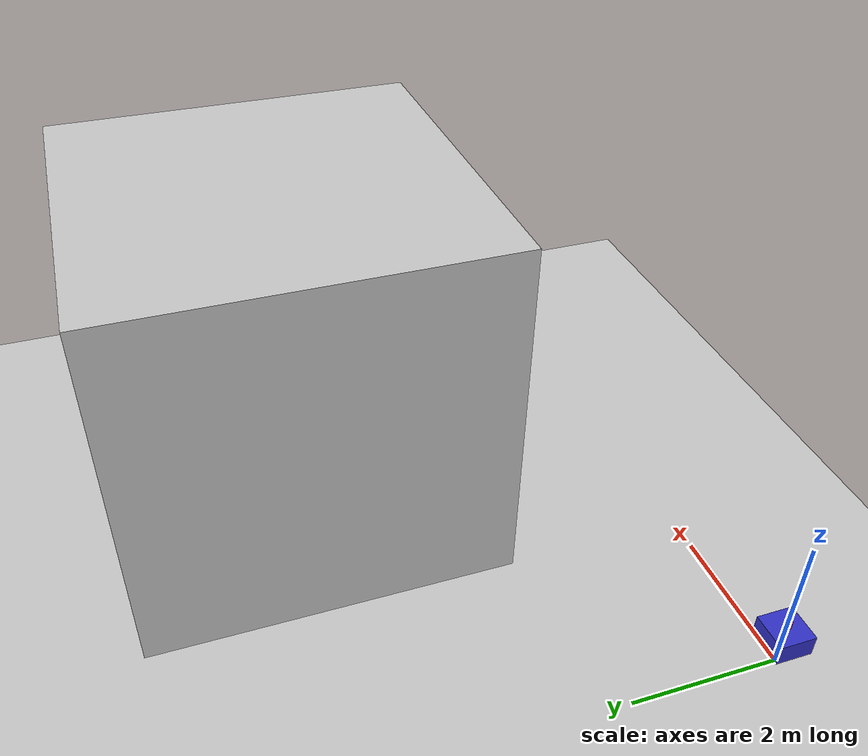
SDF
<?xml version="1.0" ?>
<sdf version="1.7">
  <world name="simple_lidar_world">

    <!-- Global light source -->
    <include>
      <uri>https://fuel.ignitionrobotics.org/1.0/OpenRobotics/models/Sun</uri>
    </include>

    <!-- Ground plane -->
    <include>
      <uri>https://fuel.ignitionrobotics.org/1.0/OpenRobotics/models/Ground Plane</uri>
    </include>

    <!-- Simple building for testing -->
    <model name="building_1">
      <pose>5 5 2.5 0 0 0</pose>
      <static>true</static>
      <link name="link">
        <collision name="collision">
          <geometry>
            <box>
              <size>5 5 5</size>
            </box>
          </geometry>
        </collision>
        <visual name="visual">
          <geometry>
            <box>
              <size>5 5 5</size>
            </box>
          </geometry>
          <material>
            <ambient>0.8 0.8 0.8 1</ambient>
            <diffuse>0.8 0.8 0.8 1</diffuse>
          </material>
        </visual>
      </link>
    </model>

    <!-- Robot with simple LiDAR -->
    <model name="simple_robot">
      <pose>0 0 0.5 0 0 0</pose>
      <static>false</static>

      <!-- Base link -->
      <link name="base_link">
        <collision name="collision">
          <geometry>
            <box>
              <size>0.5 0.5 0.3</size>
            </box>
          </geometry>
        </collision>
        <visual name="visual">
          <geometry>
            <box>
              <size>0.5 0.5 0.3</size>
            </box>
          </geometry>
          <material>
            <ambient>0.2 0.2 0.8 1</ambient>
            <diffuse>0.2 0.2 0.8 1</diffuse>
          </material>
        </visual>
        <inertial>
          <mass>10</mass>
          <inertia>
            <ixx>0.1</ixx>
            <iyy>0.1</iyy>
            <izz>0.1</izz>
          </inertia>
        </inertial>
      </link>

      <!-- LiDAR sensor -->
      <link name="lidar_link">
        <pose>0 0 0.2 0 0 0</pose>
        <collision name="collision">
          <geometry>
            <cylinder>
              <radius>0.05</radius>
              <length>0.1</length>
            </cylinder>
          </geometry>
        </collision>
        <visual name="visual">
          <geometry>
            <cylinder>
              <radius>0.05</radius>
              <length>0.1</length>
            </cylinder>
          </geometry>
          <material>
            <ambient>0.8 0.2 0.2 1</ambient>
            <diffuse>0.8 0.2 0.2 1</diffuse>
          </material>
        </visual>
        <inertial>
          <mass>0.1</mass>
          <inertia>
            <ixx>0.001</ixx>
            <iyy>0.001</iyy>
            <izz>0.001</izz>
          </inertia>
        </inertial>

        <!-- Simple 2D LiDAR sensor -->
        <sensor name="lidar_sensor" type="gpu_lidar">
          <pose>0 0 0 0 0 0</pose>
          <visualize>true</visualize>
          <update_rate>10</update_rate>
          <lidar>
            <scan>
              <horizontal>
                <samples>360</samples>
                <resolution>1</resolution>
                <min_angle>-3.14159</min_angle>
                <max_angle>3.14159</max_angle>
              </horizontal>
            </scan>
            <range>
              <min>0.1</min>
              <max>10.0</max>
              <resolution>0.01</resolution>
            </range>
          </lidar>
          <plugin filename="gz-sim-sensors-system" name="gz::sim::systems::Sensors">
            <render_engine>ogre2</render_engine>
          </plugin>
          <plugin filename="gz-sim-lidar-plugin" name="gz::sim::systems::Lidar">
            <topic>/lidar/points</topic>
            <frame_id>lidar_link</frame_id>
          </plugin>
        </sensor>
      </link>

      <!-- Joint between base and lidar -->
      <joint name="lidar_joint" type="fixed">
        <parent>base_link</parent>
        <child>lidar_link</child>
        <pose>0 0 0.2 0 0 0</pose>
      </joint>
    </model>

    <!-- Physics settings -->
    <physics name="default_physics" default="0" type="dart">
      <gravity>0 0 -9.8066</gravity>
      <dart>
        <solver>
          <solver_type>pgs</solver_type>
          <min_penetration_depth>0.001</min_penetration_depth>
          <max_penetration_depth>0.01</max_penetration_depth>
        </solver>
      </dart>
      <max_step_size>0.004</max_step_size>
      <real_time_factor>1</real_time_factor>
      <real_time_update_rate>250</real_time_update_rate>
    </physics>

  </world>
</sdf>
